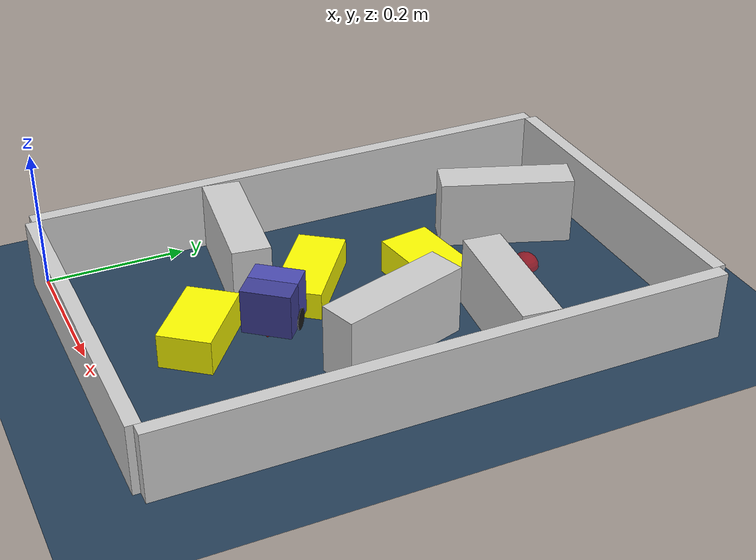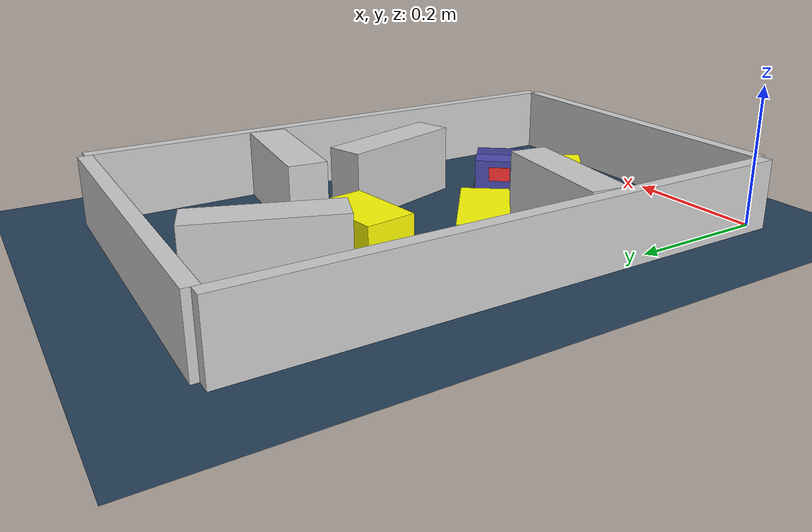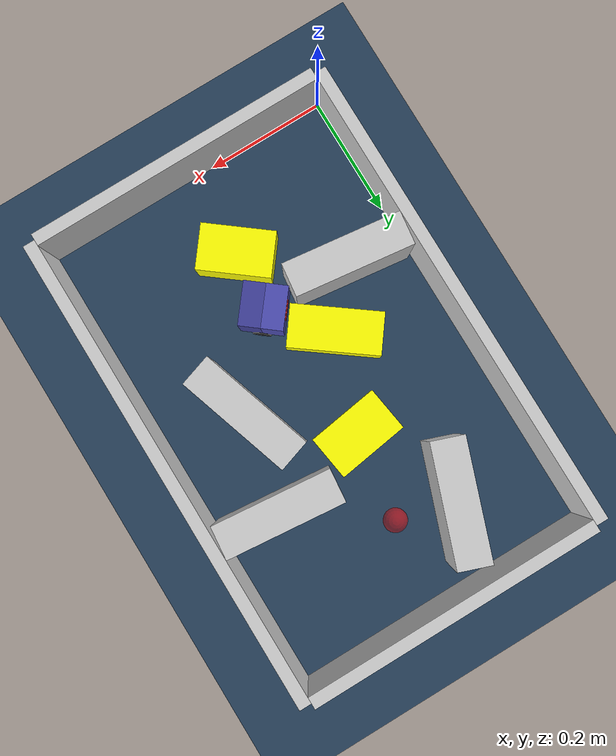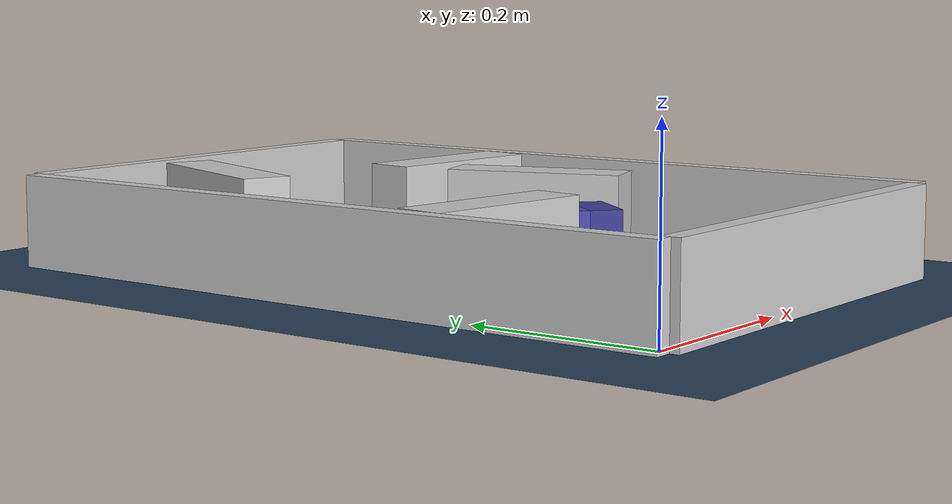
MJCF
<?xml version='1.0' encoding='utf-8'?>
<mujoco model="real_buildable">
  <compiler angle="degree" />
  <option timestep="0.002" integrator="implicitfast" iterations="100" cone="elliptic" />
  <default>
    <geom density="1" />
  </default>
  <asset>
    <texture builtin="gradient" height="3072" rgb1="0.3 0.5 0.7" rgb2="0 0 0" type="skybox" width="512" />
    <texture builtin="checker" height="300" mark="edge" markrgb="0.8 0.8 0.8" name="groundplane" rgb1="0.2 0.3 0.4" rgb2="0.1 0.2 0.3" type="2d" width="300" />
    <material name="groundplane" reflectance="0.2" texrepeat="5 5" texture="groundplane" texuniform="true" />
  </asset>
  <worldbody>
    <light dir="0 0 -1" directional="true" pos="0 0 1.5" />
    <geom name="floor" type="plane" condim="4" friction="0.5 0.005 0.001" material="groundplane" size="0 0 0.05" />
    <body name="walls">
      <geom name="wall_boundary_left" type="box" condim="4" friction="1.0 0.005 0.0001" rgba="0.8 0.8 0.8 1" pos="-0.010000 0.387500 0.050000" euler="0 0 0.000000" size="0.010000 0.397500 0.050000" />
      <geom name="wall_boundary_right" type="box" condim="4" friction="1.0 0.005 0.0001" rgba="0.8 0.8 0.8 1" pos="0.500000 0.387500 0.050000" euler="0 0 0.000000" size="0.010000 0.397500 0.050000" />
      <geom name="wall_boundary_bottom" type="box" condim="4" friction="1.0 0.005 0.0001" rgba="0.8 0.8 0.8 1" pos="0.245000 -0.010000 0.050000" euler="0 0 0.000000" size="0.245000 0.010000 0.050000" />
      <geom name="wall_boundary_top" type="box" condim="4" friction="1.0 0.005 0.0001" rgba="0.8 0.8 0.8 1" pos="0.245000 0.785000 0.050000" euler="0 0 0.000000" size="0.245000 0.010000 0.050000" />
      <geom name="wall_inner_1" type="box" condim="4" friction="1.0 0.005 0.0001" rgba="0.8 0.8 0.8 1" pos="0.100159 0.252074 0.050000" euler="0 0 172.872407" size="0.097500 0.027500 0.050000" />
      <geom name="wall_inner_2" type="box" condim="4" friction="1.0 0.005 0.0001" rgba="0.8 0.8 0.8 1" pos="0.355498 0.374849 0.050000" euler="0 0 107.948419" size="0.097500 0.027500 0.050000" />
      <geom name="wall_inner_3" type="box" condim="4" friction="1.0 0.005 0.0001" rgba="0.8 0.8 0.8 1" pos="0.390000 0.528000 0.050000" euler="0 0 174.400000" size="0.097500 0.027500 0.050000" />
      <geom name="wall_inner_4" type="box" condim="4" friction="1.0 0.005 0.0001" rgba="0.8 0.8 0.8 1" pos="0.152000 0.654000 0.050000" euler="0 0 70.200000" size="0.097500 0.027500 0.050000" />
    </body>
    <body name="car" pos="0.24859344478315462 0.24927100431391133 0.01" quat="0.32995559495411425 0 0 0.94399645410270294">
      <freejoint name="car_freejoint" />
      <inertial pos="0 0 0.0375" mass="0.35" diaginertia="0.000266 0.000266 0.000286" />
      <geom name="front_chassis_collision" type="box" pos="0.0175 0 0.0375" size="0.0175 0.035 0.0325" rgba="0.3 0.3 0.7 1" />
      <geom name="rear_chassis_collision" type="box" pos="-0.0175 0 0.0375" size="0.0175 0.035 0.0325" rgba="0.25 0.25 0.6 1" />
      <geom name="front_marker" type="box" pos="0.034 0 0.0505" size="0.002 0.015 0.01" rgba="1 0.2 0.2 1" contype="0" conaffinity="0" />
      <body name="rear_support_body" pos="-0.03 0 0.0025">
        <joint name="rear_caster_joint" type="ball" damping="0.0001" />
        <inertial pos="0 0 0" mass="0.025" diaginertia="0.000001 0.000001 0.000001" />
        <geom name="rear_support" type="sphere" pos="0 0 0" size="0.0025" friction="0 0 0" rgba="0.7 0.1 0.1 1" />
      </body>
      <body name="front_support_body" pos="0.03 0 0.0025">
        <joint name="front_caster_joint" type="ball" damping="0.0001" />
        <inertial pos="0 0 0" mass="0.025" diaginertia="0.000001 0.000001 0.000001" />
        <geom name="front_support" type="sphere" pos="0 0 0" size="0.0025" friction="0 0 0" rgba="0.1 0.7 0.1 1" />
      </body>
      <body name="left_wheel" pos="0 0.0375 0.015">
        <inertial pos="0 0 0" mass="0.05" diaginertia="0.000003 0.000006 0.000003" />
        <joint name="left_wheel_joint" type="hinge" axis="0 1 0" damping="0.01" armature="0.0001" />
        <geom name="left_wheel_collision" type="cylinder" size="0.015 0.0005" euler="90 0 0" rgba="0.1 0.1 0.1 1" />
      </body>
      <body name="right_wheel" pos="0 -0.0375 0.015">
        <inertial pos="0 0 0" mass="0.05" diaginertia="0.000003 0.000006 0.000003" />
        <joint name="right_wheel_joint" type="hinge" axis="0 1 0" damping="0.01" armature="0.0001" />
        <geom name="right_wheel_collision" type="cylinder" size="0.015 0.0005" euler="90 0 0" rgba="0.1 0.1 0.1 1" />
      </body>
    </body>
    <body name="obstacle_0_movable">
      <geom name="obstacle_0_movable" condim="4" pos="0.17024408414937861 0.33377897720480099 0.02" friction="1 0.005 0.0001" rgba="1 1 0 1" size="0.035000 0.075000 0.020000" type="box" mass="0.1" quat="0.89335884960547551 0 0 0.44934392822378416" />
      <joint type="free" />
    </body>
    <body name="obstacle_1_movable">
      <geom name="obstacle_1_movable" condim="4" pos="0.22599999999999987 0.49000000000000021 0.025000000000000001" friction="1 0.005 0.0001" rgba="1 1 0 1" size="0.037500 0.060000 0.025000" type="box" mass="0.1" quat="0.75756498438404962 0 0 -0.65275975246272244" />
      <joint type="free" />
    </body>
    <body name="obstacle_2_movable">
      <geom name="obstacle_2_movable" condim="4" pos="0.23912299999999984 0.14766699999999991 0.025000000000000001" friction="1 0.005 0.0001" rgba="1 1 0 1" size="0.037500 0.060000 0.025000" type="box" mass="0.1" quat="0.89861883124738184 0 0 0.43873020881583874" />
      <joint type="free" />
    </body>
    <site name="goal" type="sphere" pos="0.245000 0.640000 0.0" size="0.02" rgba="1 0 0 0.5" />
  </worldbody>
  <actuator>
    <velocity name="left_wheel_drive" joint="left_wheel_joint" ctrlrange="-25 25" kv="0.75" forcerange="-0.5 0.5" />
    <velocity name="right_wheel_drive" joint="right_wheel_joint" ctrlrange="-25 25" kv="0.75" forcerange="-0.5 0.5" />
  </actuator>
</mujoco>
